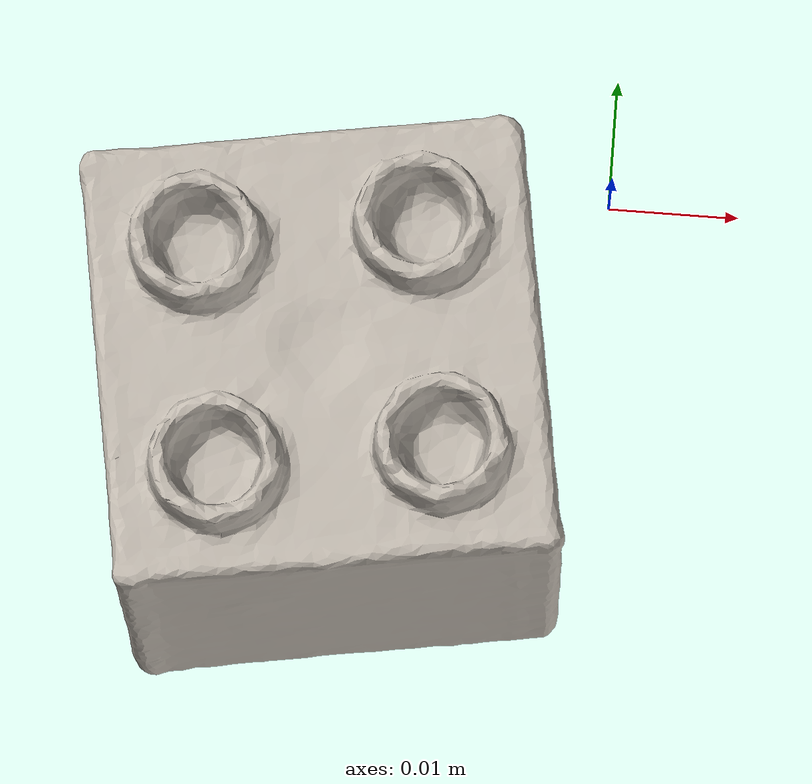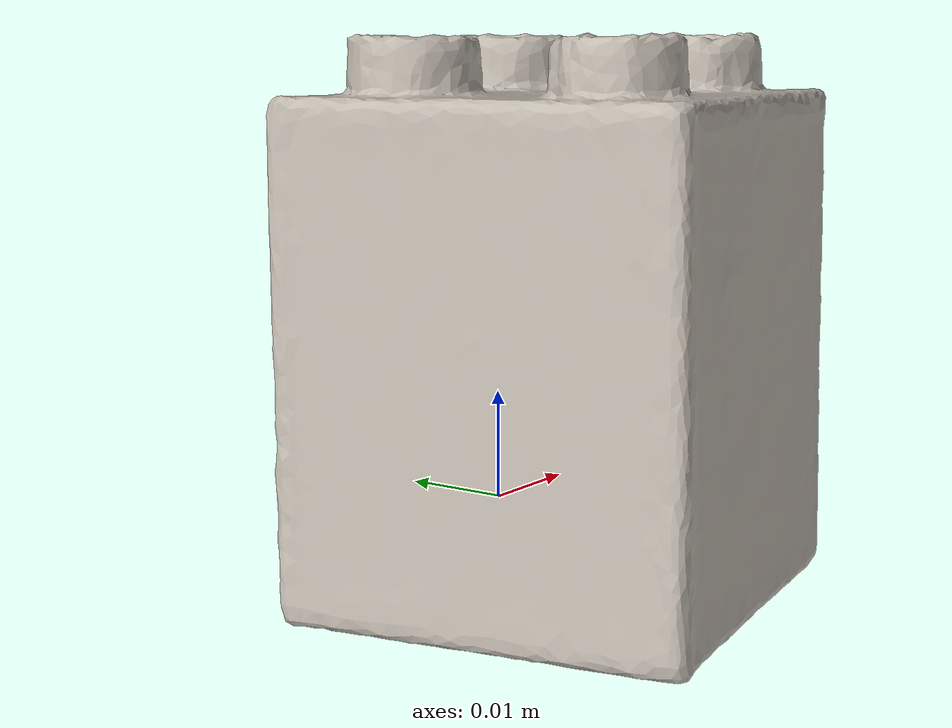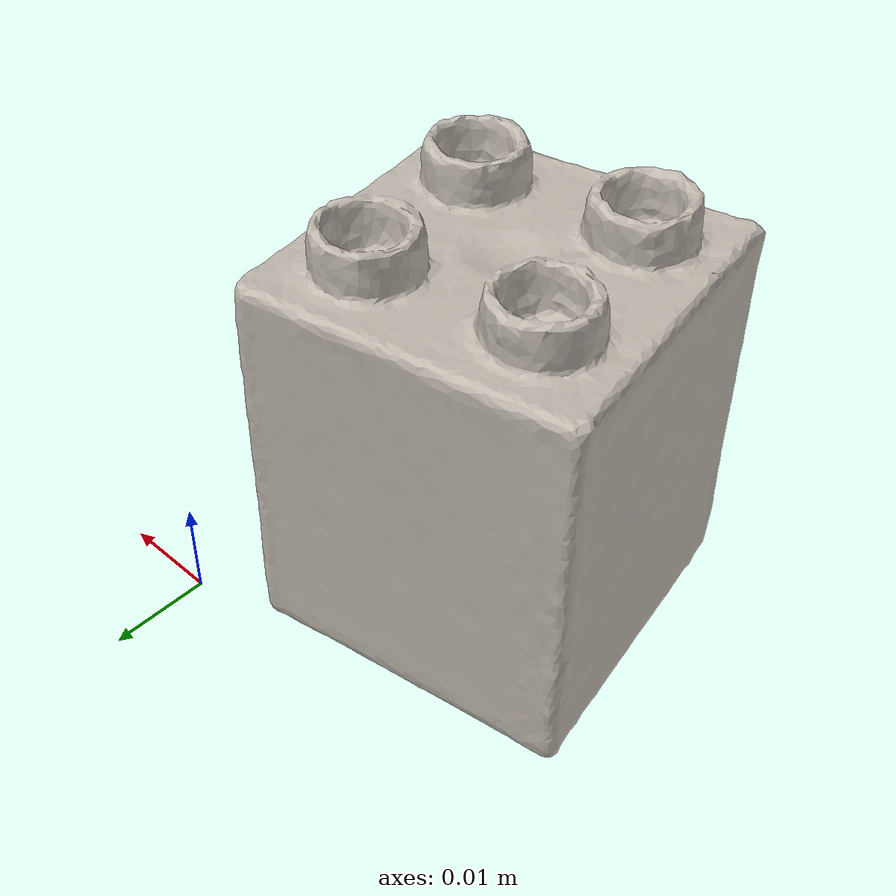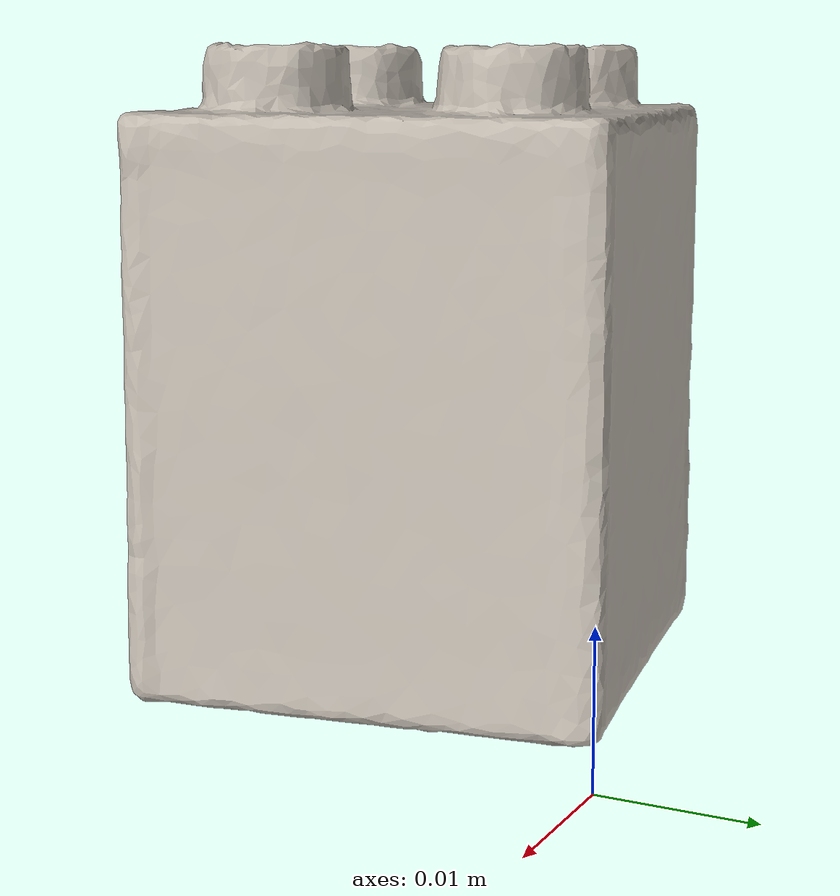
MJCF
<mujoco model="lego_a">
  <compiler angle="radian" meshdir="assets" texturedir="assets"/>
    <default>
        <default class="ycb_col">
            <geom contype="1" conaffinity="1" group="3" rgba=".4 .5 .6 1"/>
        </default>
        <default class="ycb_viz">
            <geom contype="0" conaffinity="0" type="mesh" mass="0"/>
        </default>
    </default>
  <asset>
    <texture type="2d" name="a_lego_duplo_tex" file="texture_map.png"/>
    <material name="a_lego_duplo_mat" texture="a_lego_duplo_tex" specular="0.5" shininess="0.5"/>
    <mesh file="textured.obj" name="a_lego_duplo"/>
    <mesh file="textured_collision_0.obj" name="a_lego_duplo_collision_0"/>
    <mesh file="textured_collision_1.obj" name="a_lego_duplo_collision_1"/>
    <mesh file="textured_collision_2.obj" name="a_lego_duplo_collision_2"/>
    <mesh file="textured_collision_3.obj" name="a_lego_duplo_collision_3"/>
    <mesh file="textured_collision_4.obj" name="a_lego_duplo_collision_4"/>
    <mesh file="textured_collision_5.obj" name="a_lego_duplo_collision_5"/>
    <mesh file="textured_collision_6.obj" name="a_lego_duplo_collision_6"/>
    <mesh file="textured_collision_7.obj" name="a_lego_duplo_collision_7"/>
    <mesh file="textured_collision_8.obj" name="a_lego_duplo_collision_8"/>
    <mesh file="textured_collision_9.obj" name="a_lego_duplo_collision_9"/>
    <mesh file="textured_collision_10.obj" name="a_lego_duplo_collision_10"/>
    <mesh file="textured_collision_11.obj" name="a_lego_duplo_collision_11"/>
    <mesh file="textured_collision_12.obj" name="a_lego_duplo_collision_12"/>
    <mesh file="textured_collision_13.obj" name="a_lego_duplo_collision_13"/>
    <mesh file="textured_collision_14.obj" name="a_lego_duplo_collision_14"/>
    <mesh file="textured_collision_15.obj" name="a_lego_duplo_collision_15"/>
    <mesh file="textured_collision_16.obj" name="a_lego_duplo_collision_16"/>
    <mesh file="textured_collision_17.obj" name="a_lego_duplo_collision_17"/>
    <mesh file="textured_collision_18.obj" name="a_lego_duplo_collision_18"/>
    <mesh file="textured_collision_19.obj" name="a_lego_duplo_collision_19"/>
    <mesh file="textured_collision_20.obj" name="a_lego_duplo_collision_20"/>
    <mesh file="textured_collision_21.obj" name="a_lego_duplo_collision_21"/>
    <mesh file="textured_collision_22.obj" name="a_lego_duplo_collision_22"/>
    <mesh file="textured_collision_23.obj" name="a_lego_duplo_collision_23"/>
    <mesh file="textured_collision_24.obj" name="a_lego_duplo_collision_24"/>
    <mesh file="textured_collision_25.obj" name="a_lego_duplo_collision_25"/>
    <mesh file="textured_collision_26.obj" name="a_lego_duplo_collision_26"/>
    <mesh file="textured_collision_27.obj" name="a_lego_duplo_collision_27"/>
    <mesh file="textured_collision_28.obj" name="a_lego_duplo_collision_28"/>
    <mesh file="textured_collision_29.obj" name="a_lego_duplo_collision_29"/>
    <mesh file="textured_collision_30.obj" name="a_lego_duplo_collision_30"/>
    <mesh file="textured_collision_31.obj" name="a_lego_duplo_collision_31"/>
    <mesh file="textured_collision_32.obj" name="a_lego_duplo_collision_32"/>
    <mesh file="textured_collision_33.obj" name="a_lego_duplo_collision_33"/>
    <mesh file="textured_collision_34.obj" name="a_lego_duplo_collision_34"/>
    <mesh file="textured_collision_35.obj" name="a_lego_duplo_collision_35"/>
    <mesh file="textured_collision_36.obj" name="a_lego_duplo_collision_36"/>
    <mesh file="textured_collision_37.obj" name="a_lego_duplo_collision_37"/>
    <mesh file="textured_collision_38.obj" name="a_lego_duplo_collision_38"/>
    <mesh file="textured_collision_39.obj" name="a_lego_duplo_collision_39"/>
    <mesh file="textured_collision_40.obj" name="a_lego_duplo_collision_40"/>
    <mesh file="textured_collision_41.obj" name="a_lego_duplo_collision_41"/>
    <mesh file="textured_collision_42.obj" name="a_lego_duplo_collision_42"/>
    <mesh file="textured_collision_43.obj" name="a_lego_duplo_collision_43"/>
    <mesh file="textured_collision_44.obj" name="a_lego_duplo_collision_44"/>
    <mesh file="textured_collision_45.obj" name="a_lego_duplo_collision_45"/>
    <mesh file="textured_collision_46.obj" name="a_lego_duplo_collision_46"/>
    <mesh file="textured_collision_47.obj" name="a_lego_duplo_collision_47"/>
    <mesh file="textured_collision_48.obj" name="a_lego_duplo_collision_48"/>
    <mesh file="textured_collision_49.obj" name="a_lego_duplo_collision_49"/>
    <mesh file="textured_collision_50.obj" name="a_lego_duplo_collision_50"/>
    <mesh file="textured_collision_51.obj" name="a_lego_duplo_collision_51"/>
    <mesh file="textured_collision_52.obj" name="a_lego_duplo_collision_52"/>
    <mesh file="textured_collision_53.obj" name="a_lego_duplo_collision_53"/>
    <mesh file="textured_collision_54.obj" name="a_lego_duplo_collision_54"/>
    <mesh file="textured_collision_55.obj" name="a_lego_duplo_collision_55"/>
    <mesh file="textured_collision_56.obj" name="a_lego_duplo_collision_56"/>
    <mesh file="textured_collision_57.obj" name="a_lego_duplo_collision_57"/>
    <mesh file="textured_collision_58.obj" name="a_lego_duplo_collision_58"/>
    <mesh file="textured_collision_59.obj" name="a_lego_duplo_collision_59"/>
    <mesh file="textured_collision_60.obj" name="a_lego_duplo_collision_60"/>
    <mesh file="textured_collision_61.obj" name="a_lego_duplo_collision_61"/>
    <mesh file="textured_collision_62.obj" name="a_lego_duplo_collision_62"/>
    <mesh file="textured_collision_63.obj" name="a_lego_duplo_collision_63"/>
    <mesh file="textured_collision_64.obj" name="a_lego_duplo_collision_64"/>
    <mesh file="textured_collision_65.obj" name="a_lego_duplo_collision_65"/>
    <mesh file="textured_collision_66.obj" name="a_lego_duplo_collision_66"/>
    <mesh file="textured_collision_67.obj" name="a_lego_duplo_collision_67"/>
    <mesh file="textured_collision_68.obj" name="a_lego_duplo_collision_68"/>
  </asset>
  <worldbody>
      <geom material="a_lego_duplo_mat" mesh="a_lego_duplo" class="ycb_viz"/>
      <geom mesh="a_lego_duplo_collision_0" class="ycb_col" conaffinity="1" condim="4" friction="0.1 0.1 0.1" mass="3.9571357886765665e-05" rgba="1 1 1 1" solimp="0.99 0.99 0.01" solref=".001 0.1" type="mesh" group="3"/>
      <geom mesh="a_lego_duplo_collision_1" class="ycb_col" conaffinity="1" condim="4" friction="0.1 0.1 0.1" mass="4.8901419843674466e-05" rgba="1 1 1 1" solimp="0.99 0.99 0.01" solref=".001 0.1" type="mesh" group="3"/>
      <geom mesh="a_lego_duplo_collision_2" class="ycb_col" conaffinity="1" condim="4" friction="0.1 0.1 0.1" mass="4.371061592446969e-05" rgba="1 1 1 1" solimp="0.99 0.99 0.01" solref=".001 0.1" type="mesh" group="3"/>
      <geom mesh="a_lego_duplo_collision_3" class="ycb_col" conaffinity="1" condim="4" friction="0.1 0.1 0.1" mass="4.7181326732528526e-05" rgba="1 1 1 1" solimp="0.99 0.99 0.01" solref=".001 0.1" type="mesh" group="3"/>
      <geom mesh="a_lego_duplo_collision_4" class="ycb_col" conaffinity="1" condim="4" friction="0.1 0.1 0.1" mass="0.00017630206496432538" rgba="1 1 1 1" solimp="0.99 0.99 0.01" solref=".001 0.1" type="mesh" group="3"/>
      <geom mesh="a_lego_duplo_collision_5" class="ycb_col" conaffinity="1" condim="4" friction="0.1 0.1 0.1" mass="0.00018818686353675015" rgba="1 1 1 1" solimp="0.99 0.99 0.01" solref=".001 0.1" type="mesh" group="3"/>
      <geom mesh="a_lego_duplo_collision_6" class="ycb_col" conaffinity="1" condim="4" friction="0.1 0.1 0.1" mass="0.00012789112298545473" rgba="1 1 1 1" solimp="0.99 0.99 0.01" solref=".001 0.1" type="mesh" group="3"/>
      <geom mesh="a_lego_duplo_collision_7" class="ycb_col" conaffinity="1" condim="4" friction="0.1 0.1 0.1" mass="0.0001598000814355526" rgba="1 1 1 1" solimp="0.99 0.99 0.01" solref=".001 0.1" type="mesh" group="3"/>
      <geom mesh="a_lego_duplo_collision_8" class="ycb_col" conaffinity="1" condim="4" friction="0.1 0.1 0.1" mass="0.00025176452106638467" rgba="1 1 1 1" solimp="0.99 0.99 0.01" solref=".001 0.1" type="mesh" group="3"/>
      <geom mesh="a_lego_duplo_collision_9" class="ycb_col" conaffinity="1" condim="4" friction="0.1 0.1 0.1" mass="5.3225100792237884e-05" rgba="1 1 1 1" solimp="0.99 0.99 0.01" solref=".001 0.1" type="mesh" group="3"/>
      <geom mesh="a_lego_duplo_collision_10" class="ycb_col" conaffinity="1" condim="4" friction="0.1 0.1 0.1" mass="4.212642755430827e-05" rgba="1 1 1 1" solimp="0.99 0.99 0.01" solref=".001 0.1" type="mesh" group="3"/>
      <geom mesh="a_lego_duplo_collision_11" class="ycb_col" conaffinity="1" condim="4" friction="0.1 0.1 0.1" mass="4.998908732131643e-05" rgba="1 1 1 1" solimp="0.99 0.99 0.01" solref=".001 0.1" type="mesh" group="3"/>
      <geom mesh="a_lego_duplo_collision_12" class="ycb_col" conaffinity="1" condim="4" friction="0.1 0.1 0.1" mass="5.075372716841154e-05" rgba="1 1 1 1" solimp="0.99 0.99 0.01" solref=".001 0.1" type="mesh" group="3"/>
      <geom mesh="a_lego_duplo_collision_13" class="ycb_col" conaffinity="1" condim="4" friction="0.1 0.1 0.1" mass="0.00021906135231249523" rgba="1 1 1 1" solimp="0.99 0.99 0.01" solref=".001 0.1" type="mesh" group="3"/>
      <geom mesh="a_lego_duplo_collision_14" class="ycb_col" conaffinity="1" condim="4" friction="0.1 0.1 0.1" mass="2.7971469886220422e-05" rgba="1 1 1 1" solimp="0.99 0.99 0.01" solref=".001 0.1" type="mesh" group="3"/>
      <geom mesh="a_lego_duplo_collision_15" class="ycb_col" conaffinity="1" condim="4" friction="0.1 0.1 0.1" mass="0.000453121142050028" rgba="1 1 1 1" solimp="0.99 0.99 0.01" solref=".001 0.1" type="mesh" group="3"/>
      <geom mesh="a_lego_duplo_collision_16" class="ycb_col" conaffinity="1" condim="4" friction="0.1 0.1 0.1" mass="8.108345619203141e-05" rgba="1 1 1 1" solimp="0.99 0.99 0.01" solref=".001 0.1" type="mesh" group="3"/>
      <geom mesh="a_lego_duplo_collision_17" class="ycb_col" conaffinity="1" condim="4" friction="0.1 0.1 0.1" mass="6.481367708299766e-05" rgba="1 1 1 1" solimp="0.99 0.99 0.01" solref=".001 0.1" type="mesh" group="3"/>
      <geom mesh="a_lego_duplo_collision_18" class="ycb_col" conaffinity="1" condim="4" friction="0.1 0.1 0.1" mass="4.5311488780581324e-05" rgba="1 1 1 1" solimp="0.99 0.99 0.01" solref=".001 0.1" type="mesh" group="3"/>
      <geom mesh="a_lego_duplo_collision_19" class="ycb_col" conaffinity="1" condim="4" friction="0.1 0.1 0.1" mass="2.2103405314676836e-05" rgba="1 1 1 1" solimp="0.99 0.99 0.01" solref=".001 0.1" type="mesh" group="3"/>
      <geom mesh="a_lego_duplo_collision_20" class="ycb_col" conaffinity="1" condim="4" friction="0.1 0.1 0.1" mass="6.539282820221798e-06" rgba="1 1 1 1" solimp="0.99 0.99 0.01" solref=".001 0.1" type="mesh" group="3"/>
      <geom mesh="a_lego_duplo_collision_21" class="ycb_col" conaffinity="1" condim="4" friction="0.1 0.1 0.1" mass="5.735036256118868e-05" rgba="1 1 1 1" solimp="0.99 0.99 0.01" solref=".001 0.1" type="mesh" group="3"/>
      <geom mesh="a_lego_duplo_collision_22" class="ycb_col" conaffinity="1" condim="4" friction="0.1 0.1 0.1" mass="5.329535760057114e-05" rgba="1 1 1 1" solimp="0.99 0.99 0.01" solref=".001 0.1" type="mesh" group="3"/>
      <geom mesh="a_lego_duplo_collision_23" class="ycb_col" conaffinity="1" condim="4" friction="0.1 0.1 0.1" mass="2.7657147425979095e-05" rgba="1 1 1 1" solimp="0.99 0.99 0.01" solref=".001 0.1" type="mesh" group="3"/>
      <geom mesh="a_lego_duplo_collision_24" class="ycb_col" conaffinity="1" condim="4" friction="0.1 0.1 0.1" mass="2.9864451778058524e-05" rgba="1 1 1 1" solimp="0.99 0.99 0.01" solref=".001 0.1" type="mesh" group="3"/>
      <geom mesh="a_lego_duplo_collision_25" class="ycb_col" conaffinity="1" condim="4" friction="0.1 0.1 0.1" mass="8.456484571244061e-05" rgba="1 1 1 1" solimp="0.99 0.99 0.01" solref=".001 0.1" type="mesh" group="3"/>
      <geom mesh="a_lego_duplo_collision_26" class="ycb_col" conaffinity="1" condim="4" friction="0.1 0.1 0.1" mass="0.00013133070873871944" rgba="1 1 1 1" solimp="0.99 0.99 0.01" solref=".001 0.1" type="mesh" group="3"/>
      <geom mesh="a_lego_duplo_collision_27" class="ycb_col" conaffinity="1" condim="4" friction="0.1 0.1 0.1" mass="4.628610943454313e-05" rgba="1 1 1 1" solimp="0.99 0.99 0.01" solref=".001 0.1" type="mesh" group="3"/>
      <geom mesh="a_lego_duplo_collision_28" class="ycb_col" conaffinity="1" condim="4" friction="0.1 0.1 0.1" mass="1.6499948395902995e-05" rgba="1 1 1 1" solimp="0.99 0.99 0.01" solref=".001 0.1" type="mesh" group="3"/>
      <geom mesh="a_lego_duplo_collision_29" class="ycb_col" conaffinity="1" condim="4" friction="0.1 0.1 0.1" mass="1.126184882104692e-05" rgba="1 1 1 1" solimp="0.99 0.99 0.01" solref=".001 0.1" type="mesh" group="3"/>
      <geom mesh="a_lego_duplo_collision_30" class="ycb_col" conaffinity="1" condim="4" friction="0.1 0.1 0.1" mass="9.814894363480691e-06" rgba="1 1 1 1" solimp="0.99 0.99 0.01" solref=".001 0.1" type="mesh" group="3"/>
      <geom mesh="a_lego_duplo_collision_31" class="ycb_col" conaffinity="1" condim="4" friction="0.1 0.1 0.1" mass="6.644455769207662e-05" rgba="1 1 1 1" solimp="0.99 0.99 0.01" solref=".001 0.1" type="mesh" group="3"/>
      <geom mesh="a_lego_duplo_collision_32" class="ycb_col" conaffinity="1" condim="4" friction="0.1 0.1 0.1" mass="0.00012723997401033383" rgba="1 1 1 1" solimp="0.99 0.99 0.01" solref=".001 0.1" type="mesh" group="3"/>
      <geom mesh="a_lego_duplo_collision_33" class="ycb_col" conaffinity="1" condim="4" friction="0.1 0.1 0.1" mass="8.742476909429209e-05" rgba="1 1 1 1" solimp="0.99 0.99 0.01" solref=".001 0.1" type="mesh" group="3"/>
      <geom mesh="a_lego_duplo_collision_34" class="ycb_col" conaffinity="1" condim="4" friction="0.1 0.1 0.1" mass="0.00013495790860976634" rgba="1 1 1 1" solimp="0.99 0.99 0.01" solref=".001 0.1" type="mesh" group="3"/>
      <geom mesh="a_lego_duplo_collision_35" class="ycb_col" conaffinity="1" condim="4" friction="0.1 0.1 0.1" mass="2.6422360289711462e-05" rgba="1 1 1 1" solimp="0.99 0.99 0.01" solref=".001 0.1" type="mesh" group="3"/>
      <geom mesh="a_lego_duplo_collision_36" class="ycb_col" conaffinity="1" condim="4" friction="0.1 0.1 0.1" mass="8.973816179019741e-05" rgba="1 1 1 1" solimp="0.99 0.99 0.01" solref=".001 0.1" type="mesh" group="3"/>
      <geom mesh="a_lego_duplo_collision_37" class="ycb_col" conaffinity="1" condim="4" friction="0.1 0.1 0.1" mass="1.8128444279849028e-05" rgba="1 1 1 1" solimp="0.99 0.99 0.01" solref=".001 0.1" type="mesh" group="3"/>
      <geom mesh="a_lego_duplo_collision_38" class="ycb_col" conaffinity="1" condim="4" friction="0.1 0.1 0.1" mass="3.351858900882998e-05" rgba="1 1 1 1" solimp="0.99 0.99 0.01" solref=".001 0.1" type="mesh" group="3"/>
      <geom mesh="a_lego_duplo_collision_39" class="ycb_col" conaffinity="1" condim="4" friction="0.1 0.1 0.1" mass="2.006408465641917e-05" rgba="1 1 1 1" solimp="0.99 0.99 0.01" solref=".001 0.1" type="mesh" group="3"/>
      <geom mesh="a_lego_duplo_collision_40" class="ycb_col" conaffinity="1" condim="4" friction="0.1 0.1 0.1" mass="2.8457646132749584e-05" rgba="1 1 1 1" solimp="0.99 0.99 0.01" solref=".001 0.1" type="mesh" group="3"/>
      <geom mesh="a_lego_duplo_collision_41" class="ycb_col" conaffinity="1" condim="4" friction="0.1 0.1 0.1" mass="2.4607189290287265e-05" rgba="1 1 1 1" solimp="0.99 0.99 0.01" solref=".001 0.1" type="mesh" group="3"/>
      <geom mesh="a_lego_duplo_collision_42" class="ycb_col" conaffinity="1" condim="4" friction="0.1 0.1 0.1" mass="5.694450454505313e-06" rgba="1 1 1 1" solimp="0.99 0.99 0.01" solref=".001 0.1" type="mesh" group="3"/>
      <geom mesh="a_lego_duplo_collision_43" class="ycb_col" conaffinity="1" condim="4" friction="0.1 0.1 0.1" mass="1.1750957854219894e-05" rgba="1 1 1 1" solimp="0.99 0.99 0.01" solref=".001 0.1" type="mesh" group="3"/>
      <geom mesh="a_lego_duplo_collision_44" class="ycb_col" conaffinity="1" condim="4" friction="0.1 0.1 0.1" mass="6.946377030066523e-06" rgba="1 1 1 1" solimp="0.99 0.99 0.01" solref=".001 0.1" type="mesh" group="3"/>
      <geom mesh="a_lego_duplo_collision_45" class="ycb_col" conaffinity="1" condim="4" friction="0.1 0.1 0.1" mass="1.4785079242377208e-05" rgba="1 1 1 1" solimp="0.99 0.99 0.01" solref=".001 0.1" type="mesh" group="3"/>
      <geom mesh="a_lego_duplo_collision_46" class="ycb_col" conaffinity="1" condim="4" friction="0.1 0.1 0.1" mass="8.096877920871534e-06" rgba="1 1 1 1" solimp="0.99 0.99 0.01" solref=".001 0.1" type="mesh" group="3"/>
      <geom mesh="a_lego_duplo_collision_47" class="ycb_col" conaffinity="1" condim="4" friction="0.1 0.1 0.1" mass="0.00023123879327215018" rgba="1 1 1 1" solimp="0.99 0.99 0.01" solref=".001 0.1" type="mesh" group="3"/>
      <geom mesh="a_lego_duplo_collision_48" class="ycb_col" conaffinity="1" condim="4" friction="0.1 0.1 0.1" mass="9.43300820418768e-05" rgba="1 1 1 1" solimp="0.99 0.99 0.01" solref=".001 0.1" type="mesh" group="3"/>
      <geom mesh="a_lego_duplo_collision_49" class="ycb_col" conaffinity="1" condim="4" friction="0.1 0.1 0.1" mass="5.4907444784752054e-05" rgba="1 1 1 1" solimp="0.99 0.99 0.01" solref=".001 0.1" type="mesh" group="3"/>
      <geom mesh="a_lego_duplo_collision_50" class="ycb_col" conaffinity="1" condim="4" friction="0.1 0.1 0.1" mass="3.5962307416174276e-05" rgba="1 1 1 1" solimp="0.99 0.99 0.01" solref=".001 0.1" type="mesh" group="3"/>
      <geom mesh="a_lego_duplo_collision_51" class="ycb_col" conaffinity="1" condim="4" friction="0.1 0.1 0.1" mass="0.00017114898238313438" rgba="1 1 1 1" solimp="0.99 0.99 0.01" solref=".001 0.1" type="mesh" group="3"/>
      <geom mesh="a_lego_duplo_collision_52" class="ycb_col" conaffinity="1" condim="4" friction="0.1 0.1 0.1" mass="1.1699918659090753e-05" rgba="1 1 1 1" solimp="0.99 0.99 0.01" solref=".001 0.1" type="mesh" group="3"/>
      <geom mesh="a_lego_duplo_collision_53" class="ycb_col" conaffinity="1" condim="4" friction="0.1 0.1 0.1" mass="2.530688953224951e-05" rgba="1 1 1 1" solimp="0.99 0.99 0.01" solref=".001 0.1" type="mesh" group="3"/>
      <geom mesh="a_lego_duplo_collision_54" class="ycb_col" conaffinity="1" condim="4" friction="0.1 0.1 0.1" mass="1.6987116555509553e-05" rgba="1 1 1 1" solimp="0.99 0.99 0.01" solref=".001 0.1" type="mesh" group="3"/>
      <geom mesh="a_lego_duplo_collision_55" class="ycb_col" conaffinity="1" condim="4" friction="0.1 0.1 0.1" mass="2.5151436160535552e-05" rgba="1 1 1 1" solimp="0.99 0.99 0.01" solref=".001 0.1" type="mesh" group="3"/>
      <geom mesh="a_lego_duplo_collision_56" class="ycb_col" conaffinity="1" condim="4" friction="0.1 0.1 0.1" mass="7.653714187130845e-05" rgba="1 1 1 1" solimp="0.99 0.99 0.01" solref=".001 0.1" type="mesh" group="3"/>
      <geom mesh="a_lego_duplo_collision_57" class="ycb_col" conaffinity="1" condim="4" friction="0.1 0.1 0.1" mass="9.770451472160307e-05" rgba="1 1 1 1" solimp="0.99 0.99 0.01" solref=".001 0.1" type="mesh" group="3"/>
      <geom mesh="a_lego_duplo_collision_58" class="ycb_col" conaffinity="1" condim="4" friction="0.1 0.1 0.1" mass="2.2166614172753746e-05" rgba="1 1 1 1" solimp="0.99 0.99 0.01" solref=".001 0.1" type="mesh" group="3"/>
      <geom mesh="a_lego_duplo_collision_59" class="ycb_col" conaffinity="1" condim="4" friction="0.1 0.1 0.1" mass="3.081423024932225e-05" rgba="1 1 1 1" solimp="0.99 0.99 0.01" solref=".001 0.1" type="mesh" group="3"/>
      <geom mesh="a_lego_duplo_collision_60" class="ycb_col" conaffinity="1" condim="4" friction="0.1 0.1 0.1" mass="3.2599690627992204e-05" rgba="1 1 1 1" solimp="0.99 0.99 0.01" solref=".001 0.1" type="mesh" group="3"/>
      <geom mesh="a_lego_duplo_collision_61" class="ycb_col" conaffinity="1" condim="4" friction="0.1 0.1 0.1" mass="7.374205755102953e-05" rgba="1 1 1 1" solimp="0.99 0.99 0.01" solref=".001 0.1" type="mesh" group="3"/>
      <geom mesh="a_lego_duplo_collision_62" class="ycb_col" conaffinity="1" condim="4" friction="0.1 0.1 0.1" mass="2.2154341162549168e-05" rgba="1 1 1 1" solimp="0.99 0.99 0.01" solref=".001 0.1" type="mesh" group="3"/>
      <geom mesh="a_lego_duplo_collision_63" class="ycb_col" conaffinity="1" condim="4" friction="0.1 0.1 0.1" mass="1.1992541890471642e-05" rgba="1 1 1 1" solimp="0.99 0.99 0.01" solref=".001 0.1" type="mesh" group="3"/>
      <geom mesh="a_lego_duplo_collision_64" class="ycb_col" conaffinity="1" condim="4" friction="0.1 0.1 0.1" mass="2.38561899861246e-05" rgba="1 1 1 1" solimp="0.99 0.99 0.01" solref=".001 0.1" type="mesh" group="3"/>
      <geom mesh="a_lego_duplo_collision_65" class="ycb_col" conaffinity="1" condim="4" friction="0.1 0.1 0.1" mass="2.8527484650206472e-05" rgba="1 1 1 1" solimp="0.99 0.99 0.01" solref=".001 0.1" type="mesh" group="3"/>
      <geom mesh="a_lego_duplo_collision_66" class="ycb_col" conaffinity="1" condim="4" friction="0.1 0.1 0.1" mass="1.635201887303143e-05" rgba="1 1 1 1" solimp="0.99 0.99 0.01" solref=".001 0.1" type="mesh" group="3"/>
      <geom mesh="a_lego_duplo_collision_67" class="ycb_col" conaffinity="1" condim="4" friction="0.1 0.1 0.1" mass="3.09960691745536e-05" rgba="1 1 1 1" solimp="0.99 0.99 0.01" solref=".001 0.1" type="mesh" group="3"/>
      <geom mesh="a_lego_duplo_collision_68" class="ycb_col" conaffinity="1" condim="4" friction="0.1 0.1 0.1" mass="1.4212040423663981e-05" rgba="1 1 1 1" solimp="0.99 0.99 0.01" solref=".001 0.1" type="mesh" group="3"/>
  </worldbody>
</mujoco>
